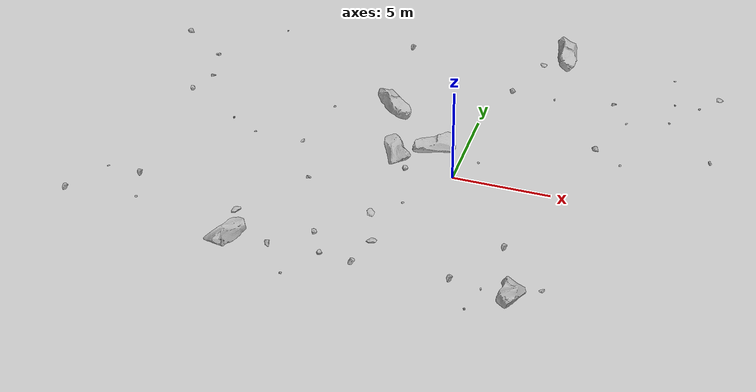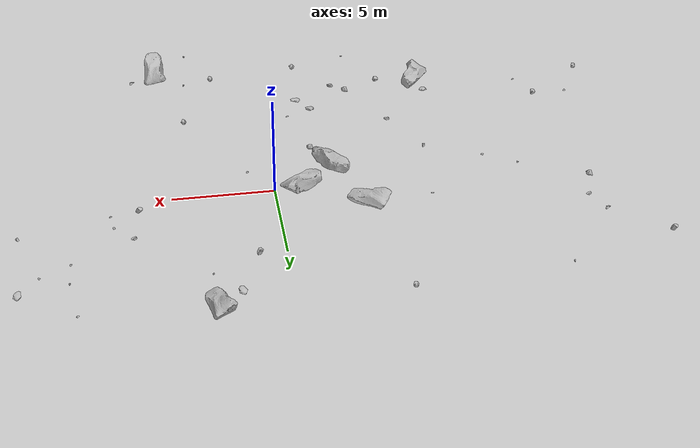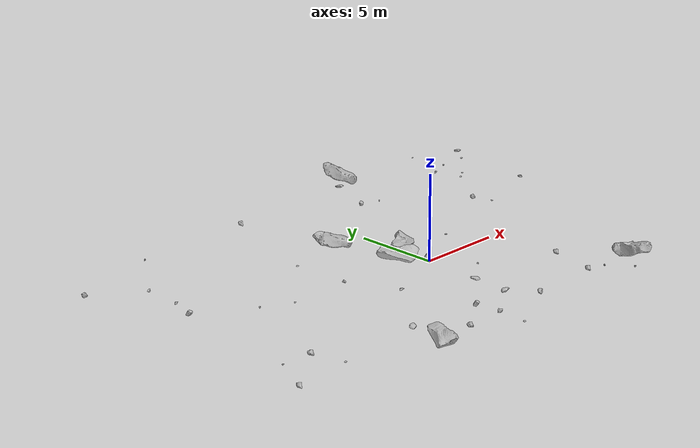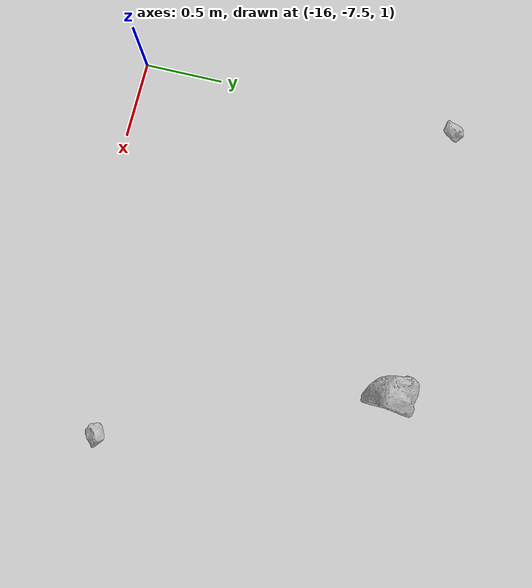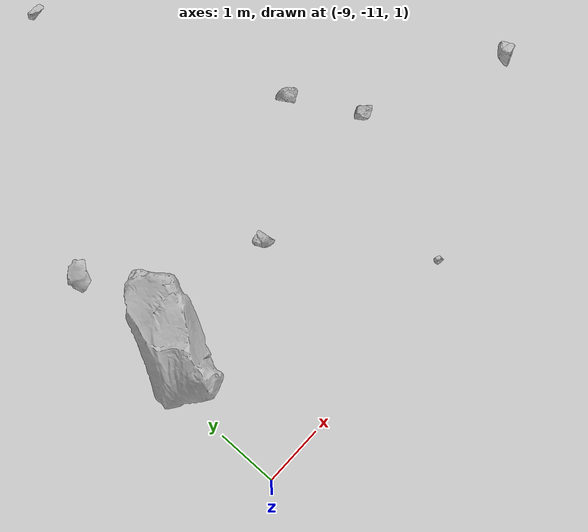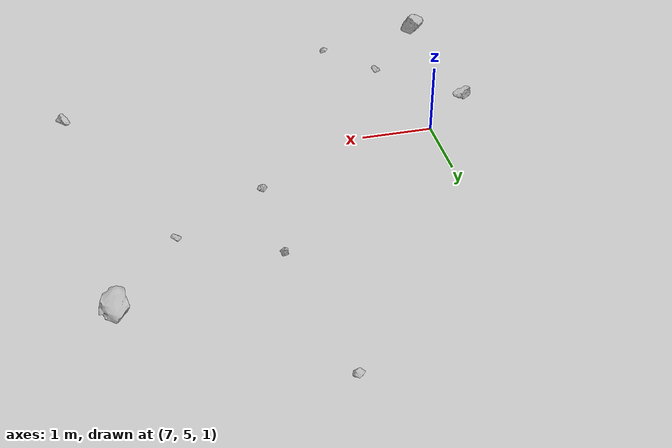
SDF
<sdf version="1.7">
 <world name="marsyard">
  <gravity>0 0 -9.81</gravity>
  <physics name="dart_physics" type="ignored">
   <max_step_size>0.003</max_step_size>
   <real_time_update_rate>333</real_time_update_rate>
   <real_time_factor>1.0</real_time_factor>
  </physics>
  <plugin filename="ignition-gazebo-physics-system" name="ignition::gazebo::systems::Physics"/>
  <plugin filename="ignition-gazebo-user-commands-system" name="ignition::gazebo::systems::UserCommands"/>
  <plugin filename="ignition-gazebo-scene-broadcaster-system" name="ignition::gazebo::systems::SceneBroadcaster"/>
  <plugin filename="ignition-gazebo-contact-system" name="ignition::gazebo::systems::Contact"/>
  <scene>
   <ambient>0.95 0.95 0.95 1</ambient>
   <background>0.70 0.70 0.70 1</background>
   <shadows>false</shadows>
  </scene>
  <light type="directional" name="sun">
   <cast_shadows>false</cast_shadows>
   <pose>0 0 30 0 0 0</pose>
   <diffuse>1 1 1 1</diffuse>
   <specular>0.15 0.15 0.15 1</specular>
   <direction>-0.35 0.1 -0.93</direction>
  </light>
  <model name="Rock_1">
   <static>true</static>
   <pose>-1.1735 -4.4332 1.4765 0.0404 0.0138 0.6752</pose>
   <link name="link">
    <visual name="visual">
     <geometry><mesh><uri>package://rock_generator/rocks_ws/rock_5/meshes/rock_5.stl</uri></mesh></geometry>
    </visual>
    <collision name="collision">
     <geometry><mesh><uri>package://rock_generator/rocks_ws/rock_5/meshes/rock_5.stl</uri></mesh></geometry>
    </collision>
   </link>
  </model>
  <model name="Rock_2">
   <static>true</static>
   <pose>6.6280 2.7059 1.3673 0.0152 0.0201 2.4677</pose>
   <link name="link">
    <visual name="visual">
     <geometry><mesh><uri>package://rock_generator/rocks_ws/rock_3/meshes/rock_3.stl</uri></mesh></geometry>
    </visual>
    <collision name="collision">
     <geometry><mesh><uri>package://rock_generator/rocks_ws/rock_3/meshes/rock_3.stl</uri></mesh></geometry>
    </collision>
   </link>
  </model>
  <model name="Rock_3">
   <static>true</static>
   <pose>11.0363 7.4294 1.5754 0.0166 0.0077 -0.7871</pose>
   <link name="link">
    <visual name="visual">
     <geometry><mesh><uri>package://rock_generator/rocks_ws/rock_5/meshes/rock_5.stl</uri></mesh></geometry>
    </visual>
    <collision name="collision">
     <geometry><mesh><uri>package://rock_generator/rocks_ws/rock_5/meshes/rock_5.stl</uri></mesh></geometry>
    </collision>
   </link>
  </model>
  <model name="Rock_6">
   <static>true</static>
   <pose>-10.3656 -0.3277 0.8814 0.0050 0.0071 -2.2300</pose>
   <link name="link">
    <visual name="visual">
     <geometry><mesh><uri>package://rock_generator/rocks_ws/rock_5/meshes/rock_5.stl</uri></mesh></geometry>
    </visual>
    <collision name="collision">
     <geometry><mesh><uri>package://rock_generator/rocks_ws/rock_5/meshes/rock_5.stl</uri></mesh></geometry>
    </collision>
   </link>
  </model>
  <model name="Rock_7">
   <static>true</static>
   <pose>9.7132 6.1944 1.2392 -0.0015 -0.0092 2.0614</pose>
   <link name="link">
    <visual name="visual">
     <geometry><mesh><uri>package://rock_generator/rocks_ws/rock_5/meshes/rock_5.stl</uri></mesh></geometry>
    </visual>
   </link>
  </model>
  <model name="Rock_8">
   <static>true</static>
   <pose>-1.8934 -6.8863 0.9226 0.0070 -0.0043 3.0993</pose>
   <link name="link">
    <visual name="visual">
     <geometry><mesh><uri>package://rock_generator/rocks_ws/rock_8/meshes/rock_8.stl</uri></mesh></geometry>
    </visual>
    <collision name="collision">
     <geometry><mesh><uri>package://rock_generator/rocks_ws/rock_8/meshes/rock_8.stl</uri></mesh></geometry>
    </collision>
   </link>
  </model>
  <model name="Rock_9">
   <static>true</static>
   <pose>-8.6719 -6.7737 1.0511 0.0042 0.0004 -2.4373</pose>
   <link name="link">
    <visual name="visual">
     <geometry><mesh><uri>package://rock_generator/rocks_ws/rock_8/meshes/rock_8.stl</uri></mesh></geometry>
    </visual>
    <collision name="collision">
     <geometry><mesh><uri>package://rock_generator/rocks_ws/rock_8/meshes/rock_8.stl</uri></mesh></geometry>
    </collision>
   </link>
  </model>
  <model name="Rock_10">
   <static>true</static>
   <pose>3.8062 -8.8906 1.1805 -0.0003 -0.0000 1.0559</pose>
   <link name="link">
    <visual name="visual">
     <geometry><mesh><uri>package://rock_generator/rocks_ws/rock_9/meshes/rock_9.stl</uri></mesh></geometry>
    </visual>
    <collision name="collision">
     <geometry><mesh><uri>package://rock_generator/rocks_ws/rock_9/meshes/rock_9.stl</uri></mesh></geometry>
    </collision>
   </link>
  </model>
  <model name="Rock_12">
   <static>true</static>
   <pose>-6.3073 -8.4547 0.8951 -0.0025 0.0035 1.7627</pose>
   <link name="link">
    <visual name="visual">
     <geometry><mesh><uri>package://rock_generator/rocks_ws/rock_3/meshes/rock_3.stl</uri></mesh></geometry>
    </visual>
   </link>
  </model>
  <model name="Rock_13">
   <static>true</static>
   <pose>-14.1828 -5.5317 1.0771 0.0306 -0.0425 1.4834</pose>
   <link name="link">
    <visual name="visual">
     <geometry><mesh><uri>package://rock_generator/rocks_ws/rock_3/meshes/rock_3.stl</uri></mesh></geometry>
    </visual>
    <collision name="collision">
     <geometry><mesh><uri>package://rock_generator/rocks_ws/rock_3/meshes/rock_3.stl</uri></mesh></geometry>
    </collision>
   </link>
  </model>
  <model name="Rock_15">
   <static>true</static>
   <pose>1.3086 -0.0017 1.2285 0.0000 -0.0000 2.5028</pose>
   <link name="link">
    <visual name="visual">
     <geometry><mesh><uri>package://rock_generator/rocks_ws/rock_5/meshes/rock_5.stl</uri></mesh></geometry>
    </visual>
   </link>
  </model>
  <model name="Rock_16">
   <static>true</static>
   <pose>3.4438 10.4609 1.3948 0.1018 -0.2356 1.9213</pose>
   <link name="link">
    <visual name="visual">
     <geometry><mesh><uri>package://rock_generator/rocks_ws/rock_4/meshes/rock_4.stl</uri></mesh></geometry>
    </visual>
   </link>
  </model>
  <model name="Rock_17">
   <static>true</static>
   <pose>-3.9099 -8.2807 0.7647 -0.0011 0.0032 -1.8173</pose>
   <link name="link">
    <visual name="visual">
     <geometry><mesh><uri>package://rock_generator/rocks_ws/rock_1/meshes/rock_1.stl</uri></mesh></geometry>
    </visual>
    <collision name="collision">
     <geometry><mesh><uri>package://rock_generator/rocks_ws/rock_1/meshes/rock_1.stl</uri></mesh></geometry>
    </collision>
   </link>
  </model>
  <model name="Rock_18">
   <static>true</static>
   <pose>12.1147 3.6451 1.0388 -0.0617 -0.0371 1.9113</pose>
   <link name="link">
    <visual name="visual">
     <geometry><mesh><uri>package://rock_generator/rocks_ws/rock_6/meshes/rock_6.stl</uri></mesh></geometry>
    </visual>
    <collision name="collision">
     <geometry><mesh><uri>package://rock_generator/rocks_ws/rock_6/meshes/rock_6.stl</uri></mesh></geometry>
    </collision>
   </link>
  </model>
  <model name="Rock_19">
   <static>true</static>
   <pose>-17.4770 7.5254 1.1136 0.0023 0.0066 2.6544</pose>
   <link name="link">
    <visual name="visual">
     <geometry><mesh><uri>package://rock_generator/rocks_ws/rock_3/meshes/rock_3.stl</uri></mesh></geometry>
    </visual>
    <collision name="collision">
     <geometry><mesh><uri>package://rock_generator/rocks_ws/rock_3/meshes/rock_3.stl</uri></mesh></geometry>
    </collision>
   </link>
  </model>
  <model name="Rock_20">
   <static>true</static>
   <pose>2.4500 -8.9366 1.4237 -0.0098 -0.0047 0.9900</pose>
   <link name="link">
    <visual name="visual">
     <geometry><mesh><uri>package://rock_generator/rocks_ws/rock_3/meshes/rock_3.stl</uri></mesh></geometry>
    </visual>
    <collision name="collision">
     <geometry><mesh><uri>package://rock_generator/rocks_ws/rock_3/meshes/rock_3.stl</uri></mesh></geometry>
    </collision>
   </link>
  </model>
  <model name="Rock_22">
   <static>true</static>
   <pose>-12.3171 9.1544 1.0835 0.0396 0.0079 -1.7585</pose>
   <link name="link">
    <visual name="visual">
     <geometry><mesh><uri>package://rock_generator/rocks_ws/rock_9/meshes/rock_9.stl</uri></mesh></geometry>
    </visual>
    <collision name="collision">
     <geometry><mesh><uri>package://rock_generator/rocks_ws/rock_9/meshes/rock_9.stl</uri></mesh></geometry>
    </collision>
   </link>
  </model>
  <model name="Rock_23">
   <static>true</static>
   <pose>-4.1028 3.4269 1.1761 -0.0012 -0.2158 2.6113</pose>
   <link name="link">
    <visual name="visual">
     <geometry><mesh><uri>package://rock_generator/rocks_ws/rock_4/meshes/rock_4.stl</uri></mesh></geometry>
    </visual>
   </link>
  </model>
  <model name="Rock_24">
   <static>true</static>
   <pose>-14.9614 5.5023 1.1878 -0.0068 0.0012 -2.7097</pose>
   <link name="link">
    <visual name="visual">
     <geometry><mesh><uri>package://rock_generator/rocks_ws/rock_6/meshes/rock_6.stl</uri></mesh></geometry>
    </visual>
    <collision name="collision">
     <geometry><mesh><uri>package://rock_generator/rocks_ws/rock_6/meshes/rock_6.stl</uri></mesh></geometry>
    </collision>
   </link>
  </model>
  <model name="Rock_25">
   <static>true</static>
   <pose>3.6232 -10.9460 1.7560 0.0031 0.0005 -0.6766</pose>
   <link name="link">
    <visual name="visual">
     <geometry><mesh><uri>package://rock_generator/rocks_ws/rock_9/meshes/rock_9.stl</uri></mesh></geometry>
    </visual>
    <collision name="collision">
     <geometry><mesh><uri>package://rock_generator/rocks_ws/rock_9/meshes/rock_9.stl</uri></mesh></geometry>
    </collision>
   </link>
  </model>
  <model name="Rock_26">
   <static>true</static>
   <pose>-4.6345 -7.3233 1.0904 0.0132 0.0067 -1.0781</pose>
   <link name="link">
    <visual name="visual">
     <geometry><mesh><uri>package://rock_generator/rocks_ws/rock_3/meshes/rock_3.stl</uri></mesh></geometry>
    </visual>
   </link>
  </model>
  <model name="Rock_27">
   <static>true</static>
   <pose>-4.8735 -10.6015 1.2721 -0.0003 0.0004 -0.2797</pose>
   <link name="link">
    <visual name="visual">
     <geometry><mesh><uri>package://rock_generator/rocks_ws/rock_5/meshes/rock_5.stl</uri></mesh></geometry>
    </visual>
   </link>
  </model>
  <model name="Rock_28">
   <static>true</static>
   <pose>7.9174 2.2956 0.9065 -0.0037 -0.0082 1.2408</pose>
   <link name="link">
    <visual name="visual">
     <geometry><mesh><uri>package://rock_generator/rocks_ws/rock_5/meshes/rock_5.stl</uri></mesh></geometry>
    </visual>
    <collision name="collision">
     <geometry><mesh><uri>package://rock_generator/rocks_ws/rock_5/meshes/rock_5.stl</uri></mesh></geometry>
    </collision>
   </link>
  </model>
  <model name="Rock_29">
   <static>true</static>
   <pose>9.4274 10.0347 1.3622 -0.1554 -0.1090 -2.5909</pose>
   <link name="link">
    <visual name="visual">
     <geometry><mesh><uri>package://rock_generator/rocks_ws/rock_5/meshes/rock_5.stl</uri></mesh></geometry>
    </visual>
    <collision name="collision">
     <geometry><mesh><uri>package://rock_generator/rocks_ws/rock_5/meshes/rock_5.stl</uri></mesh></geometry>
    </collision>
   </link>
  </model>
  <model name="Rock_30">
   <static>true</static>
   <pose>4.0859 -5.5836 0.9353 -0.0137 -0.0018 0.9699</pose>
   <link name="link">
    <visual name="visual">
     <geometry><mesh><uri>package://rock_generator/rocks_ws/rock_3/meshes/rock_3.stl</uri></mesh></geometry>
    </visual>
   </link>
  </model>
  <model name="Rock_31">
   <static>true</static>
   <pose>9.7493 7.7418 1.3603 0.0007 0.0025 2.2258</pose>
   <link name="link">
    <visual name="visual">
     <geometry><mesh><uri>package://rock_generator/rocks_ws/rock_9/meshes/rock_9.stl</uri></mesh></geometry>
    </visual>
    <collision name="collision">
     <geometry><mesh><uri>package://rock_generator/rocks_ws/rock_9/meshes/rock_9.stl</uri></mesh></geometry>
    </collision>
   </link>
  </model>
  <model name="Rock_32">
   <static>true</static>
   <pose>-11.9313 0.5617 0.8303 -0.0031 -0.0047 -0.2582</pose>
   <link name="link">
    <visual name="visual">
     <geometry><mesh><uri>package://rock_generator/rocks_ws/rock_9/meshes/rock_9.stl</uri></mesh></geometry>
    </visual>
    <collision name="collision">
     <geometry><mesh><uri>package://rock_generator/rocks_ws/rock_9/meshes/rock_9.stl</uri></mesh></geometry>
    </collision>
   </link>
  </model>
  <model name="Rock_33">
   <static>true</static>
   <pose>-8.4194 -8.3834 0.7164 -0.0016 -0.0009 -1.9018</pose>
   <link name="link">
    <visual name="visual">
     <geometry><mesh><uri>package://rock_generator/rocks_ws/rock_4/meshes/rock_4.stl</uri></mesh></geometry>
    </visual>
    <collision name="collision">
     <geometry><mesh><uri>package://rock_generator/rocks_ws/rock_4/meshes/rock_4.stl</uri></mesh></geometry>
    </collision>
   </link>
  </model>
  <model name="Rock_35">
   <static>true</static>
   <pose>6.4784 -8.7184 1.6470 -0.0021 0.0062 -2.4807</pose>
   <link name="link">
    <visual name="visual">
     <geometry><mesh><uri>package://rock_generator/rocks_ws/rock_6/meshes/rock_6.stl</uri></mesh></geometry>
    </visual>
    <collision name="collision">
     <geometry><mesh><uri>package://rock_generator/rocks_ws/rock_6/meshes/rock_6.stl</uri></mesh></geometry>
    </collision>
   </link>
  </model>
  <model name="Rock_36">
   <static>true</static>
   <pose>3.5404 7.2202 0.7912 0.0033 -0.0040 0.6372</pose>
   <link name="link">
    <visual name="visual">
     <geometry><mesh><uri>package://rock_generator/rocks_ws/rock_9/meshes/rock_9.stl</uri></mesh></geometry>
    </visual>
    <collision name="collision">
     <geometry><mesh><uri>package://rock_generator/rocks_ws/rock_9/meshes/rock_9.stl</uri></mesh></geometry>
    </collision>
   </link>
  </model>
  <model name="Rock_37">
   <static>true</static>
   <pose>-6.1660 -3.7067 1.3123 0.0029 0.0004 -0.2012</pose>
   <link name="link">
    <visual name="visual">
     <geometry><mesh><uri>package://rock_generator/rocks_ws/rock_6/meshes/rock_6.stl</uri></mesh></geometry>
    </visual>
    <collision name="collision">
     <geometry><mesh><uri>package://rock_generator/rocks_ws/rock_6/meshes/rock_6.stl</uri></mesh></geometry>
    </collision>
   </link>
  </model>
  <model name="Rock_38">
   <static>true</static>
   <pose>-2.8556 -0.2801 1.0528 -0.0075 0.0010 -0.9027</pose>
   <link name="link">
    <visual name="visual">
     <geometry><mesh><uri>package://rock_generator/rocks_ws/rock_4/meshes/rock_4.stl</uri></mesh></geometry>
    </visual>
    <collision name="collision">
     <geometry><mesh><uri>package://rock_generator/rocks_ws/rock_4/meshes/rock_4.stl</uri></mesh></geometry>
    </collision>
   </link>
  </model>
  <model name="Rock_39">
   <static>true</static>
   <pose>5.2747 -9.7126 1.6309 -0.0347 0.3439 1.7000</pose>
   <link name="link">
    <visual name="visual">
     <geometry><mesh><uri>package://rock_generator/rocks_ws/rock_4/meshes/rock_4.stl</uri></mesh></geometry>
    </visual>
    <collision name="collision">
     <geometry><mesh><uri>package://rock_generator/rocks_ws/rock_4/meshes/rock_4.stl</uri></mesh></geometry>
    </collision>
   </link>
  </model>
  <model name="Rock_40">
   <static>true</static>
   <pose>7.7297 4.5874 1.8628 -0.0262 -0.0342 -1.3322</pose>
   <link name="link">
    <visual name="visual">
     <geometry><mesh><uri>package://rock_generator/rocks_ws/rock_5/meshes/rock_5.stl</uri></mesh></geometry>
    </visual>
    <collision name="collision">
     <geometry><mesh><uri>package://rock_generator/rocks_ws/rock_5/meshes/rock_5.stl</uri></mesh></geometry>
    </collision>
   </link>
  </model>
  <model name="Rock_41">
   <static>true</static>
   <pose>-13.6454 -7.1944 0.9778 -0.0015 0.0019 0.5538</pose>
   <link name="link">
    <visual name="visual">
     <geometry><mesh><uri>package://rock_generator/rocks_ws/rock_5/meshes/rock_5.stl</uri></mesh></geometry>
    </visual>
    <collision name="collision">
     <geometry><mesh><uri>package://rock_generator/rocks_ws/rock_5/meshes/rock_5.stl</uri></mesh></geometry>
    </collision>
   </link>
  </model>
  <model name="Rock_43">
   <static>true</static>
   <pose>2.4420 9.3968 1.4258 -0.0061 0.0154 1.7224</pose>
   <link name="link">
    <visual name="visual">
     <geometry><mesh><uri>package://rock_generator/rocks_ws/rock_8/meshes/rock_8.stl</uri></mesh></geometry>
    </visual>
   </link>
  </model>
  <model name="Rock_45">
   <static>true</static>
   <pose>-15.1406 2.2337 0.9659 -0.0546 0.0150 -1.2352</pose>
   <link name="link">
    <visual name="visual">
     <geometry><mesh><uri>package://rock_generator/rocks_ws/rock_3/meshes/rock_3.stl</uri></mesh></geometry>
    </visual>
    <collision name="collision">
     <geometry><mesh><uri>package://rock_generator/rocks_ws/rock_3/meshes/rock_3.stl</uri></mesh></geometry>
    </collision>
   </link>
  </model>
  <model name="Rock_46">
   <static>true</static>
   <pose>-1.9870 -9.3460 1.5879 -0.2592 0.0250 0.3313</pose>
   <link name="link">
    <visual name="visual">
     <geometry><mesh><uri>package://rock_generator/rocks_ws/rock_3/meshes/rock_3.stl</uri></mesh></geometry>
    </visual>
   </link>
  </model>
  <model name="Rock_47">
   <static>true</static>
   <pose>-7.2016 2.8227 1.0242 -0.0122 -0.0072 0.0865</pose>
   <link name="link">
    <visual name="visual">
     <geometry><mesh><uri>package://rock_generator/rocks_ws/rock_5/meshes/rock_5.stl</uri></mesh></geometry>
    </visual>
   </link>
  </model>
  <model name="Rock_48">
   <static>true</static>
   <pose>-14.5710 3.8523 0.8964 0.0149 0.0029 0.3192</pose>
   <link name="link">
    <visual name="visual">
     <geometry><mesh><uri>package://rock_generator/rocks_ws/rock_6/meshes/rock_6.stl</uri></mesh></geometry>
    </visual>
    <collision name="collision">
     <geometry><mesh><uri>package://rock_generator/rocks_ws/rock_6/meshes/rock_6.stl</uri></mesh></geometry>
    </collision>
   </link>
  </model>
  <model name="Rock_49">
   <static>true</static>
   <pose>-17.0313 -7.7931 1.1722 -0.0044 0.0407 1.0494</pose>
   <link name="link">
    <visual name="visual">
     <geometry><mesh><uri>package://rock_generator/rocks_ws/rock_3/meshes/rock_3.stl</uri></mesh></geometry>
    </visual>
    <collision name="collision">
     <geometry><mesh><uri>package://rock_generator/rocks_ws/rock_3/meshes/rock_3.stl</uri></mesh></geometry>
    </collision>
   </link>
  </model>
  <model name="Rock_50">
   <static>true</static>
   <pose>-2.4557 -5.3624 1.2812 0.0040 0.0032 -1.1112</pose>
   <link name="link">
    <visual name="visual">
     <geometry><mesh><uri>package://rock_generator/rocks_ws/rock_8/meshes/rock_8.stl</uri></mesh></geometry>
    </visual>
    <collision name="collision">
     <geometry><mesh><uri>package://rock_generator/rocks_ws/rock_8/meshes/rock_8.stl</uri></mesh></geometry>
    </collision>
   </link>
  </model>
  <model name="Rock_51">
   <static>true</static>
   <pose>-2.0327 -1.6699 1.3090 -0.0298 -0.0220 -0.9817</pose>
   <link name="link">
    <visual name="visual">
     <geometry><mesh><uri>package://rock_generator/rocks_ws/rock_3/meshes/rock_3.stl</uri></mesh></geometry>
    </visual>
   </link>
  </model>
  <model name="Rock_52">
   <static>true</static>
   <pose>-4.9782 9.6328 1.0174 0.0063 -0.0043 1.0545</pose>
   <link name="link">
    <visual name="visual">
     <geometry><mesh><uri>package://rock_generator/rocks_ws/rock_3/meshes/rock_3.stl</uri></mesh></geometry>
    </visual>
    <collision name="collision">
     <geometry><mesh><uri>package://rock_generator/rocks_ws/rock_3/meshes/rock_3.stl</uri></mesh></geometry>
    </collision>
   </link>
  </model>
  <model name="Rock_53">
   <static>true</static>
   <pose>6.8670 5.8026 2.0731 0.0006 -0.0036 0.3275</pose>
   <link name="link">
    <visual name="visual">
     <geometry><mesh><uri>package://rock_generator/rocks_ws/rock_6/meshes/rock_6.stl</uri></mesh></geometry>
    </visual>
    <collision name="collision">
     <geometry><mesh><uri>package://rock_generator/rocks_ws/rock_6/meshes/rock_6.stl</uri></mesh></geometry>
    </collision>
   </link>
  </model>
  <model name="Rock_55">
   <static>true</static>
   <pose>-15.9865 -5.4718 1.0754 0.0068 0.0044 -2.0817</pose>
   <link name="link">
    <visual name="visual">
     <geometry><mesh><uri>package://rock_generator/rocks_ws/rock_5/meshes/rock_5.stl</uri></mesh></geometry>
    </visual>
    <collision name="collision">
     <geometry><mesh><uri>package://rock_generator/rocks_ws/rock_5/meshes/rock_5.stl</uri></mesh></geometry>
    </collision>
   </link>
  </model>
  <model name="Rock_57">
   <static>true</static>
   <pose>-7.5096 -0.9603 1.3177 -0.0015 0.0072 -1.8660</pose>
   <link name="link">
    <visual name="visual">
     <geometry><mesh><uri>package://rock_generator/rocks_ws/rock_6/meshes/rock_6.stl</uri></mesh></geometry>
    </visual>
    <collision name="collision">
     <geometry><mesh><uri>package://rock_generator/rocks_ws/rock_6/meshes/rock_6.stl</uri></mesh></geometry>
    </collision>
   </link>
  </model>
  <model name="Rock_58">
   <static>true</static>
   <pose>11.9335 8.5298 1.5912 0.0281 0.0511 1.3036</pose>
   <link name="link">
    <visual name="visual">
     <geometry><mesh><uri>package://rock_generator/rocks_ws/rock_8/meshes/rock_8.stl</uri></mesh></geometry>
    </visual>
    <collision name="collision">
     <geometry><mesh><uri>package://rock_generator/rocks_ws/rock_8/meshes/rock_8.stl</uri></mesh></geometry>
    </collision>
   </link>
  </model>
  <model name="Rock_62">
   <static>true</static>
   <pose>-1.2682 0.9715 0.8030 -0.0003 -0.0004 0.6325</pose>
   <link name="link">
    <visual name="visual">
     <geometry><mesh><uri>package://rock_generator/rocks_ws/rock_4/meshes/rock_4.stl</uri></mesh></geometry>
    </visual>
    <collision name="collision">
     <geometry><mesh><uri>package://rock_generator/rocks_ws/rock_4/meshes/rock_4.stl</uri></mesh></geometry>
    </collision>
   </link>
  </model>
  <model name="Rock_63">
   <static>true</static>
   <pose>1.3648 6.6537 1.3001 -0.0033 -0.0006 -2.7462</pose>
   <link name="link">
    <visual name="visual">
     <geometry><mesh><uri>package://rock_generator/rocks_ws/rock_3/meshes/rock_3.stl</uri></mesh></geometry>
    </visual>
    <collision name="collision">
     <geometry><mesh><uri>package://rock_generator/rocks_ws/rock_3/meshes/rock_3.stl</uri></mesh></geometry>
    </collision>
   </link>
  </model>
 </world>
</sdf>
